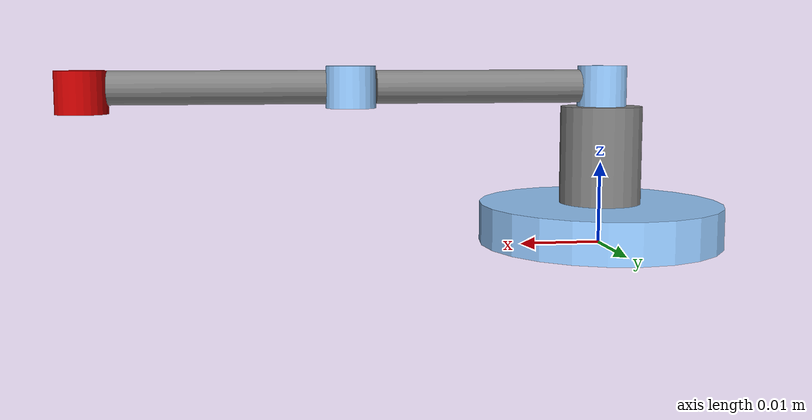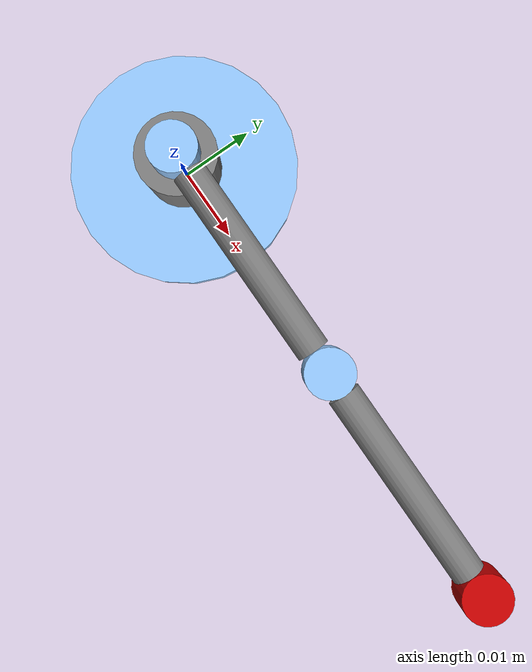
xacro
<?xml version="1.0"?>

<!-- Make the namespace of the robot-->
<robot xmlns:xacro="http://www.ros.org/wiki/xacro" name="r2_arm">
    <!--Define constants-->

    <xacro:property name="M_PI" value="3.14159"/>

    <!-- Constants for the robotic arm (masses in kg, lengths in m) -->

    <xacro:property name="max_effort" value="100" />
    <xacro:property name="max_velocity" value="${M_PI/4}" />

    <xacro:property name="damping_1" value="0.02" />
    <xacro:property name="damping_2" value="0.02" />

    <!-- base_link -->
    <xacro:property name="length_0" value="0.005" />
    <xacro:property name="radius_0" value="0.015" />
    <xacro:property name="mass_0" value="0.200" />

    <!-- joint_f1 fixed -->

    <!-- link_1 -->
    <xacro:property name="length_1" value="0.012" />
    <xacro:property name="radius_1" value="0.005" />
    <xacro:property name="mass_1" value="0.100" />

    <!-- joint_f2 fixed -->

    <!-- link_j1 -->
    <xacro:property name="length_j1" value="0.005" />
    <xacro:property name="radius_j1" value="0.003" />
    <xacro:property name="mass_j1" value="0.020" />

    <!-- revolute joint link_j1 - link_2 -->

    <!-- link_2 -->
    <xacro:property name="length_2" value="0.025" />
    <xacro:property name="radius_2" value="0.002" />
    <xacro:property name="mass_2" value="0.100" />

    <!-- joint_f3 fixed -->

    <!-- link_j2 -->
    <xacro:property name="length_j2" value="0.005" />
    <xacro:property name="radius_j2" value="0.003" />
    <xacro:property name="mass_j2" value="0.020" />

    <!-- revolute joint link_j2 - link_3 -->

    <!-- link_3 -->
    <xacro:property name="length_3" value="0.025" />
    <xacro:property name="radius_3" value="0.002" />
    <xacro:property name="mass_3" value="0.100" />

    <!-- joint_f4 fixed link_3 - link_ee -->

    <!-- link_ee -->
    <xacro:property name="length_ee" value="0.005" />
    <xacro:property name="radius_ee" value="0.003" />
    <xacro:property name="mass_ee" value="0.100" />

    <!--Define colors-->
    <material name="Black">
        <color rgba="0.0 0.0 0.0 1.0"/>
    </material>
    <material name="Red">
        <color rgba="0.8 0.0 0.0 1.0"/>
    </material>
    <material name="Blue">
        <color rgba="0.0 0.0 1.0 1.0"/>
    </material>
    <material name="LightBlue">
        <color rgba="0.589 0.793 1.0 1.0"/>
    </material>
    <material name="Grey">
        <color rgba="0.5 0.5 0.5 1.0"/>
    </material>
    <material name="White">
        <color rgba="1.0 1.0 1.0 1.0"/>
    </material>

    <!-- macros for inertia -->

    <!-- ref: https://en.wikipedia.org/wiki/List_of_moments_of_inertia#List_of_3D_inertia_tensors -->

    <xacro:macro name="cylinder_inertial_block" params="mass length radius">
      <inertial>
        <origin xyz="0 0 ${length/2}" rpy="0 0 0"/>
        <mass value="${mass}"/>
        <inertia
            ixx="${mass / 12.0 * (3*radius*radius+length*length)}" ixy="0.0" ixz="0.0"
            iyy="${mass / 12.0 * (3*radius*radius+length*length)}" iyz="0.0"
            izz="${mass / 2.0 * (radius*radius)}" />
      </inertial>
    </xacro:macro>

    <xacro:macro name="box_inertial_block" params="mass x y z">
      <inertial>
        <origin xyz="0 0 ${z/2}" rpy="0 0 0"/>
        <mass value="${mass}"/>
        <inertia
            ixx="${mass / 12.0 * (y*y+z*z)}" ixy="0.0" ixz="0.0"
            iyy="${mass / 12.0 * (x*x+z*z)}" iyz="0.0"
            izz="${mass / 12.0 * (x*x+y*y)}" />
      </inertial>
    </xacro:macro>

    <!-- macros for transmission -->
    <xacro:macro name="transmission_block" params="joint_name">
	  <transmission name="tran1">
	    <type>transmission_interface/SimpleTransmission</type>
	    <joint name="${joint_name}">
          <!-- Position/Velocity/Effort|JointInterface -->
	      <hardwareInterface>hardware_interface/EffortJointInterface</hardwareInterface>
	    </joint>
	    <actuator name="motor_${joint_name}">
	      <hardwareInterface>hardware_interface/EffortJointInterface</hardwareInterface>
	      <mechanicalReduction>1</mechanicalReduction>
	    </actuator>
	  </transmission>
    </xacro:macro>

    <!--Define Gazebo colors-->
    <xacro:macro name="gazebo_grey_link_color_block" params="link_name">
    <gazebo reference="${link_name}">
    <visual>
      <material>
        <ambient>0.5 0.5 0.5 1.0</ambient>
        <diffuse>0.56666695 0.56666695 0.56666695 1.0</diffuse>
        <specular>0.6000003 0.6000003 0.6000003 1.0</specular>
      </material>
    </visual>
    </gazebo>
    </xacro:macro>

    <xacro:macro name="gazebo_blue_link_color_block" params="link_name">
    <gazebo reference="${link_name}">
    <visual>
      <material>
	<ambient>0.589 0.793 1.0 1.0</ambient>
	<diffuse>0.56666695 0.56666695 0.56666695 1.0</diffuse>
	<specular>0.6000003 0.6000003 0.6000003 1.0</specular>
      </material>
    </visual>
    </gazebo>
    </xacro:macro>

    <xacro:macro name="gazebo_orange_link_color_block" params="link_name">
    <gazebo reference="${link_name}">
    <visual>
      <material>
	    <ambient>1.0 0.4 0.0 1.0</ambient>
	    <diffuse>0.56666695 0.56666695 0.56666695 1.0</diffuse>
	    <specular>0.6000003 0.6000003 0.6000003 1.0</specular>
      </material>
    </visual>
    </gazebo>
    </xacro:macro>

    <xacro:macro name="gazebo_red_link_color_block" params="link_name">
    <gazebo reference="${link_name}">
    <visual>
      <material>
	    <ambient>1.0 0.0 0.0 1.0</ambient>
	    <diffuse>0.56666695 0.56666695 0.56666695 1.0</diffuse>
	    <specular>0.6000003 0.6000003 0.6000003 1.0</specular>
      </material>
    </visual>
    </gazebo>
    </xacro:macro>

    <xacro:macro name="gazebo_self_collision" params="link_name">
    <gazebo reference="${link_name}">
      <selfCollide>true</selfCollide>
    </gazebo>
    </xacro:macro>

    <link name="world"/>

    <!-- joint world - base_link -->
    <joint name="world_joint" type="fixed">
        <origin xyz="0.0 0.0 0.0" rpy="0.0 0.0 0.0"/>
        <parent link="world"/>
        <child link="base_link"/>
    </joint>

    <!-- base_link -->
    <link name="base_link">
        <xacro:cylinder_inertial_block mass="${mass_0}" length="${length_0}" radius="${radius_0}"/>
        <visual>
            <origin xyz="0.0 0.0 ${length_0/2.0}" rpy="0.0 0.0 0.0"/>
            <geometry>
                <cylinder radius="${radius_0}" length="${length_0}"/>
            </geometry>
            <material name="LightBlue"/>
        </visual>
        <collision>
            <origin xyz="0.0 0.0 ${length_0/2.0}" rpy="0.0 0.0 0.0"/>
            <geometry>
                <cylinder radius="${radius_0}" length="${length_0}"/>
            </geometry>>
        </collision>
    </link>
    <xacro:gazebo_orange_link_color_block link_name="base_link"/>

    <!-- fixed joint base_link - link_1 -->
    <joint name="joint_f1" type="fixed">
        <origin xyz="0.0 0.0 ${length_0}" rpy="0.0 0.0 0.0"/>
        <parent link="base_link"/>
        <child link="link_1"/>
    </joint>
    <gazebo reference="joint_f1">
        <disableFixedJointLumping>true</disableFixedJointLumping>
        <preserveFixedJoint>true</preserveFixedJoint>
    </gazebo>

    <!-- link_1 -->
    <link name="link_1">
        <xacro:cylinder_inertial_block mass="${mass_1}" length="${length_1}" radius="${radius_1}"/>
        <visual>
            <origin xyz="0.0 0.0 ${length_1/2.0}" rpy="0.0 0.0 0.0"/>
            <geometry>
                <cylinder radius="${radius_1}" length="${length_1}"/>
            </geometry>
            <material name="Grey"/>
        </visual>
        <collision>
            <origin xyz="0.0 0.0 ${length_1/2.0}" rpy="0.0 0.0 0.0"/>
            <geometry>
                <cylinder radius="${radius_1}" length="${length_1}"/>
            </geometry>>
        </collision>
    </link>
    <xacro:gazebo_grey_link_color_block link_name="link_1"/>

    <!-- revolute joint link_1 - link_j1 -->
    <joint name="joint_1" type="revolute">
        <origin xyz="0.0 0.0 ${length_1}" rpy="0.0 0.0 0.0"/>
        <parent link="link_1"/>
        <child link="link_j1"/>
        <axis xyz="0 0 1"/>
        <dynamics damping="${damping_1}" friction="0.001" />
        <limit lower="${-100*M_PI}" upper="${100*M_PI}" effort="${max_effort}" velocity="${max_velocity}"/>
    </joint>

    <!-- link link_j1 -->
    <link name="link_j1">
        <xacro:cylinder_inertial_block mass="${mass_j1}" length="${length_j1}" radius="${radius_j1}"/>
        <visual>
            <origin xyz="0.0 0.0 ${length_j1/2.0}" rpy="0.0 0.0 0.0"/>
            <geometry>
                <cylinder radius="${radius_j1}" length="${length_j1}"/>
            </geometry>
            <material name="LightBlue"/>
        </visual>
        <collision>
            <origin xyz="0.0 0.0 ${length_j1/2.0}" rpy="0.0 0.0 0.0"/>
            <geometry>
                <cylinder radius="${radius_j1}" length="${length_j1}"/>
            </geometry>
        </collision>
    </link>
    <xacro:gazebo_blue_link_color_block link_name="link_j1"/>

    <!-- fixed joint link_j1 - link_2 -->
    <joint name="joint_f2" type="fixed">
        <origin xyz="${radius_j1} 0.0 ${length_j1/2.0}" rpy="0.0 ${M_PI/2} 0.0"/>
        <parent link="link_j1"/>
        <child link="link_2"/>
    </joint>
    <gazebo reference="joint_f2">
        <disableFixedJointLumping>true</disableFixedJointLumping>
        <preserveFixedJoint>true</preserveFixedJoint>
    </gazebo>

    <!--link_2-->
    <link name="link_2">
        <xacro:cylinder_inertial_block mass="${mass_2}" length="${length_2}" radius="${radius_2}"/>
        <visual>
            <origin xyz="0.0 0.0 ${length_2/2.0}" rpy="0.0 0.0 0.0"/>
            <geometry>
                <cylinder radius="${radius_2}" length="${length_2}"/>
            </geometry>
            <material name="Grey"/>
        </visual>
        <collision>
            <origin xyz="0.0 0.0 ${length_2/2.0}" rpy="0.0 0.0 0.0"/>
            <geometry>
                <cylinder radius="${radius_2}" length="${length_2}"/>
            </geometry>>
        </collision>
    </link>
    <xacro:gazebo_grey_link_color_block link_name="link_2"/>

    <!-- revolute joint link_2 - link_j2 -->
    <joint name="joint_2" type="revolute">
        <origin xyz="${length_j2/2.0} 0.0 ${length_2+radius_j2}" rpy="0.0 ${-M_PI/2} 0.0"/>
        <parent link="link_2"/>
        <child link="link_j2"/>
        <axis xyz="0 0 1"/>
        <dynamics damping="${damping_2}" friction="0.001"/>
        <limit lower="${-M_PI}" upper="${M_PI}" effort="${max_effort}" velocity="${max_velocity}"/>
    </joint>

    <!-- link link_j2 -->
    <link name="link_j2">
        <xacro:cylinder_inertial_block mass="${mass_j2}" length="${length_j2}" radius="${radius_j2}"/>
        <visual>
            <origin xyz="0.0 0.0 ${length_j2/2.0}" rpy="0.0 0.0 0.0"/>
            <geometry>
                <cylinder radius="${radius_j2}" length="${length_j2}"/>
            </geometry>
            <material name="LightBlue"/>
        </visual>

        <collision>
            <origin xyz="0.0 0.0 ${length_j2/2.0}" rpy="0.0 0.0 0.0"/>
            <geometry>
                <cylinder radius="${radius_j2}" length="${length_j2}"/>
            </geometry>
        </collision>
    </link>
    <xacro:gazebo_blue_link_color_block link_name="link_j2"/>

    <!-- fixed joint link_j2 - link_3 -->
    <joint name="joint_f3" type="fixed">
        <origin xyz="${radius_j2} 0.0 ${length_j2/2.0}" rpy="0.0 ${M_PI/2} 0.0"/>
        <parent link="link_j2"/>
        <child link="link_3"/>
    </joint>
    <gazebo reference="joint_f3">
        <disableFixedJointLumping>true</disableFixedJointLumping>
        <preserveFixedJoint>true</preserveFixedJoint>
    </gazebo>

    <!--link_3-->
    <link name="link_3">
        <xacro:cylinder_inertial_block mass="${mass_3}" length="${length_3}" radius="${radius_3}"/>
        <visual>
            <origin xyz="0.0 0.0 ${length_3/2.0}" rpy="0.0 0.0 0.0"/>
            <geometry>
                <cylinder radius="${radius_3}" length="${length_3}"/>
            </geometry>
            <material name="Grey"/>
        </visual>

        <collision>
            <origin xyz="0.0 0.0 ${length_3/2.0}" rpy="0.0 0.0 0.0"/>
            <geometry>
                <cylinder radius="${radius_3}" length="${length_3}"/>
            </geometry>>
        </collision>
    </link>
    <xacro:gazebo_grey_link_color_block link_name="link_3"/>

    <!-- fixed joint link_3 - link_ee -->
    <joint name="joint_f4" type="fixed">
        <origin xyz="${-radius_3} 0.0 ${length_3+radius_ee}" rpy="0.0 ${M_PI/2} 0.0"/>
        <parent link="link_3"/>
        <child link="link_ee"/>
    </joint>
    <gazebo reference="joint_f4">
        <disableFixedJointLumping>true</disableFixedJointLumping>
        <preserveFixedJoint>true</preserveFixedJoint>
    </gazebo>

    <!--link_ee-->
    <link name="link_ee">
        <xacro:cylinder_inertial_block mass="${mass_ee}" length="${length_ee}" radius="${radius_ee}"/>
        <visual>
            <origin xyz="0.0 0.0 ${length_ee/2.0}" rpy="0.0 0.0 0.0"/>
            <geometry>
                <cylinder radius="${radius_ee}" length="${length_ee}"/>
            </geometry>
            <material name="Red"/>
        </visual>

        <collision>
            <origin xyz="0.0 0.0 ${length_ee/2.0}" rpy="0.0 0.0 0.0"/>
            <geometry>
                <cylinder radius="${radius_ee}" length="${length_ee}"/>
            </geometry>>
        </collision>
    </link>
    <xacro:gazebo_red_link_color_block link_name="link_ee"/>

<!-- self collision -->

     <xacro:gazebo_self_collision link_name="base_link"/>
     <xacro:gazebo_self_collision link_name="link_1"/>
     <xacro:gazebo_self_collision link_name="link_2"/>
     <xacro:gazebo_self_collision link_name="link_3"/>
     <xacro:gazebo_self_collision link_name="link_j1"/>
     <xacro:gazebo_self_collision link_name="link_j2"/>
     <xacro:gazebo_self_collision link_name="link_ee"/>

    <!-- Transmissions for ros control -->
    <xacro:transmission_block joint_name="joint_1"/>
    <xacro:transmission_block joint_name="joint_2"/>

    <!-- ros_control plugin -->
    <gazebo>
        <plugin name="gazebo_ros_control" filename="libgazebo_ros_control.so">
        <robotNamespace>/r2_arm</robotNamespace>
        </plugin>
    </gazebo>

</robot>
